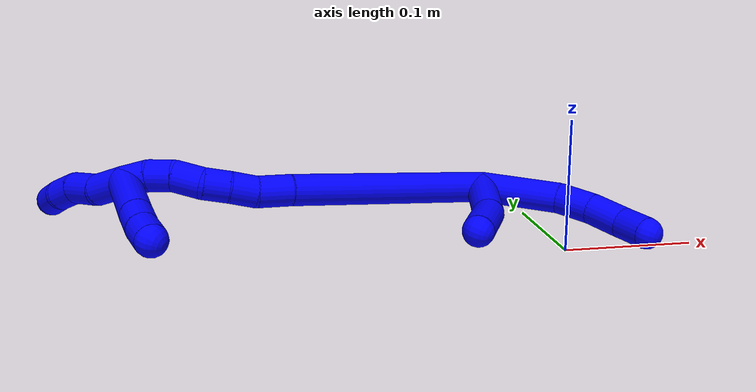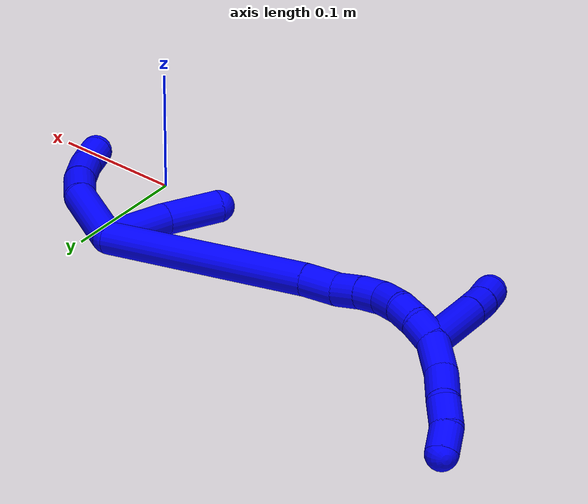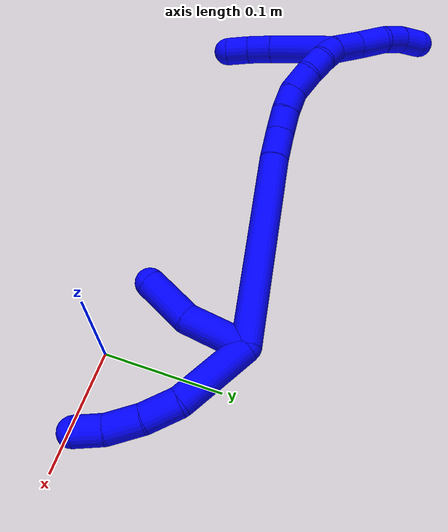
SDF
<sdf version="1.7">
 <world name="default">
  <model name="1">
   <static>0</static>
   <link name="1">
    <collision name="collision-cylinder-e_1_2_8">
     <pose>0.005806 -0.004931 -0.031844 2.98797 0.178256 1.71967</pose>
     <geometry><cylinder><radius>0.0125</radius><length>0.065485</length></cylinder></geometry>
     <surface>
      <friction><ode><mu>1.16</mu><mu2>1.16</mu2><slip1>0</slip1><slip2>0</slip2></ode></friction>
      <contact><ode><kp>1e+06</kp><kd>1</kd><max_vel>0</max_vel><min_depth>0.001</min_depth></ode></contact>
     </surface>
    </collision>
    <visual name="visual-cylinder-e_1_2_8">
     <pose>0.005806 -0.004931 -0.031844 2.98797 0.178256 1.71967</pose>
     <geometry><cylinder><radius>0.0125</radius><length>0.065485</length></cylinder></geometry>
     <material><ambient>0 0 1 1</ambient></material>
    </visual>
    <collision name="collision-cylinder-e_2_8_9">
     <pose>0.009676 -0.01296 -0.078152 2.93058 -0.130106 -1.10299</pose>
     <geometry><cylinder><radius>0.0125</radius><length>0.029836</length></cylinder></geometry>
     <surface>
      <friction><ode><mu>1.16</mu><mu2>1.16</mu2><slip1>0</slip1><slip2>0</slip2></ode></friction>
      <contact><ode><kp>1e+06</kp><kd>1</kd><max_vel>0</max_vel><min_depth>0.001</min_depth></ode></contact>
     </surface>
    </collision>
    <visual name="visual-cylinder-e_2_8_9">
     <pose>0.009676 -0.01296 -0.078152 2.93058 -0.130106 -1.10299</pose>
     <geometry><cylinder><radius>0.0125</radius><length>0.029836</length></cylinder></geometry>
     <material><ambient>0 0 1 1</ambient></material>
    </visual>
    <collision name="collision-cylinder-e_3_9_10">
     <pose>0.00328 -0.019462 -0.106445 2.90021 -0.303501 -1.80058</pose>
     <geometry><cylinder><radius>0.0125</radius><length>0.029847</length></cylinder></geometry>
     <surface>
      <friction><ode><mu>1.16</mu><mu2>1.16</mu2><slip1>0</slip1><slip2>0</slip2></ode></friction>
      <contact><ode><kp>1e+06</kp><kd>1</kd><max_vel>0</max_vel><min_depth>0.001</min_depth></ode></contact>
     </surface>
    </collision>
    <visual name="visual-cylinder-e_3_9_10">
     <pose>0.00328 -0.019462 -0.106445 2.90021 -0.303501 -1.80058</pose>
     <geometry><cylinder><radius>0.0125</radius><length>0.029847</length></cylinder></geometry>
     <material><ambient>0 0 1 1</ambient></material>
    </visual>
    <collision name="collision-cylinder-e_4_10_6">
     <pose>-0.006393 -0.027567 -0.130515 2.71127 -0.433308 -1.57793</pose>
     <geometry><cylinder><radius>0.0125</radius><length>0.024831</length></cylinder></geometry>
     <surface>
      <friction><ode><mu>1.16</mu><mu2>1.16</mu2><slip1>0</slip1><slip2>0</slip2></ode></friction>
      <contact><ode><kp>1e+06</kp><kd>1</kd><max_vel>0</max_vel><min_depth>0.001</min_depth></ode></contact>
     </surface>
    </collision>
    <visual name="visual-cylinder-e_4_10_6">
     <pose>-0.006393 -0.027567 -0.130515 2.71127 -0.433308 -1.57793</pose>
     <geometry><cylinder><radius>0.0125</radius><length>0.024831</length></cylinder></geometry>
     <material><ambient>0 0 1 1</ambient></material>
    </visual>
    <collision name="collision-cylinder-e_1_2_11">
     <pose>-0.022346 -0.010372 -0.012191 2.43663 -0.949209 -1.89887</pose>
     <geometry><cylinder><radius>0.0125</radius><length>0.054974</length></cylinder></geometry>
     <surface>
      <friction><ode><mu>1.16</mu><mu2>1.16</mu2><slip1>0</slip1><slip2>0</slip2></ode></friction>
      <contact><ode><kp>1e+06</kp><kd>1</kd><max_vel>0</max_vel><min_depth>0.001</min_depth></ode></contact>
     </surface>
    </collision>
    <visual name="visual-cylinder-e_1_2_11">
     <pose>-0.022346 -0.010372 -0.012191 2.43663 -0.949209 -1.89887</pose>
     <geometry><cylinder><radius>0.0125</radius><length>0.054974</length></cylinder></geometry>
     <material><ambient>0 0 1 1</ambient></material>
    </visual>
    <collision name="collision-cylinder-e_2_11_5">
     <pose>-0.064461 -0.03092 -0.027908 1.90439 -1.07199 -1.39085</pose>
     <geometry><cylinder><radius>0.0125</radius><length>0.045026</length></cylinder></geometry>
     <surface>
      <friction><ode><mu>1.16</mu><mu2>1.16</mu2><slip1>0</slip1><slip2>0</slip2></ode></friction>
      <contact><ode><kp>1e+06</kp><kd>1</kd><max_vel>0</max_vel><min_depth>0.001</min_depth></ode></contact>
     </surface>
    </collision>
    <visual name="visual-cylinder-e_2_11_5">
     <pose>-0.064461 -0.03092 -0.027908 1.90439 -1.07199 -1.39085</pose>
     <geometry><cylinder><radius>0.0125</radius><length>0.045026</length></cylinder></geometry>
     <material><ambient>0 0 1 1</ambient></material>
    </visual>
    <collision name="collision-cylinder-e_1_2_12">
     <pose>-0.058456 -0.018749 0.056808 0.318781 -0.773852 -0.130817</pose>
     <geometry><cylinder><radius>0.0125</radius><length>0.167282</length></cylinder></geometry>
     <surface>
      <friction><ode><mu>1.16</mu><mu2>1.16</mu2><slip1>0</slip1><slip2>0</slip2></ode></friction>
      <contact><ode><kp>1e+06</kp><kd>1</kd><max_vel>0</max_vel><min_depth>0.001</min_depth></ode></contact>
     </surface>
    </collision>
    <visual name="visual-cylinder-e_1_2_12">
     <pose>-0.058456 -0.018749 0.056808 0.318781 -0.773852 -0.130817</pose>
     <geometry><cylinder><radius>0.0125</radius><length>0.167282</length></cylinder></geometry>
     <material><ambient>0 0 1 1</ambient></material>
    </visual>
    <collision name="collision-cylinder-e_2_12_13">
     <pose>-0.126452 -0.039597 0.123332 0.2128 -0.764825 -0.085863</pose>
     <geometry><cylinder><radius>0.0125</radius><length>0.027554</length></cylinder></geometry>
     <surface>
      <friction><ode><mu>1.16</mu><mu2>1.16</mu2><slip1>0</slip1><slip2>0</slip2></ode></friction>
      <contact><ode><kp>1e+06</kp><kd>1</kd><max_vel>0</max_vel><min_depth>0.001</min_depth></ode></contact>
     </surface>
    </collision>
    <visual name="visual-cylinder-e_2_12_13">
     <pose>-0.126452 -0.039597 0.123332 0.2128 -0.764825 -0.085863</pose>
     <geometry><cylinder><radius>0.0125</radius><length>0.027554</length></cylinder></geometry>
     <material><ambient>0 0 1 1</ambient></material>
    </visual>
    <collision name="collision-cylinder-e_3_13_14">
     <pose>-0.141848 -0.045015 0.141379 0.37908 -0.578549 -0.11407</pose>
     <geometry><cylinder><radius>0.0125</radius><length>0.02142</length></cylinder></geometry>
     <surface>
      <friction><ode><mu>1.16</mu><mu2>1.16</mu2><slip1>0</slip1><slip2>0</slip2></ode></friction>
      <contact><ode><kp>1e+06</kp><kd>1</kd><max_vel>0</max_vel><min_depth>0.001</min_depth></ode></contact>
     </surface>
    </collision>
    <visual name="visual-cylinder-e_3_13_14">
     <pose>-0.141848 -0.045015 0.141379 0.37908 -0.578549 -0.11407</pose>
     <geometry><cylinder><radius>0.0125</radius><length>0.02142</length></cylinder></geometry>
     <material><ambient>0 0 1 1</ambient></material>
    </visual>
    <collision name="collision-cylinder-e_4_14_15">
     <pose>-0.152954 -0.050431 0.158136 0.244034 -0.543765 -0.068346</pose>
     <geometry><cylinder><radius>0.0125</radius><length>0.020294</length></cylinder></geometry>
     <surface>
      <friction><ode><mu>1.16</mu><mu2>1.16</mu2><slip1>0</slip1><slip2>0</slip2></ode></friction>
      <contact><ode><kp>1e+06</kp><kd>1</kd><max_vel>0</max_vel><min_depth>0.001</min_depth></ode></contact>
     </surface>
    </collision>
    <visual name="visual-cylinder-e_4_14_15">
     <pose>-0.152954 -0.050431 0.158136 0.244034 -0.543765 -0.068346</pose>
     <geometry><cylinder><radius>0.0125</radius><length>0.020294</length></cylinder></geometry>
     <material><ambient>0 0 1 1</ambient></material>
    </visual>
    <collision name="collision-cylinder-e_5_15_16">
     <pose>-0.161131 -0.053416 0.177738 0.079141 -0.255403 -0.010167</pose>
     <geometry><cylinder><radius>0.0125</radius><length>0.023174</length></cylinder></geometry>
     <surface>
      <friction><ode><mu>1.16</mu><mu2>1.16</mu2><slip1>0</slip1><slip2>0</slip2></ode></friction>
      <contact><ode><kp>1e+06</kp><kd>1</kd><max_vel>0</max_vel><min_depth>0.001</min_depth></ode></contact>
     </surface>
    </collision>
    <visual name="visual-cylinder-e_5_15_16">
     <pose>-0.161131 -0.053416 0.177738 0.079141 -0.255403 -0.010167</pose>
     <geometry><cylinder><radius>0.0125</radius><length>0.023174</length></cylinder></geometry>
     <material><ambient>0 0 1 1</ambient></material>
    </visual>
    <collision name="collision-cylinder-e_6_16_17">
     <pose>-0.167961 -0.053014 0.198146 -0.138606 -0.39654 0.02789</pose>
     <geometry><cylinder><radius>0.0125</radius><length>0.02021</length></cylinder></geometry>
     <surface>
      <friction><ode><mu>1.16</mu><mu2>1.16</mu2><slip1>0</slip1><slip2>0</slip2></ode></friction>
      <contact><ode><kp>1e+06</kp><kd>1</kd><max_vel>0</max_vel><min_depth>0.001</min_depth></ode></contact>
     </surface>
    </collision>
    <visual name="visual-cylinder-e_6_16_17">
     <pose>-0.167961 -0.053014 0.198146 -0.138606 -0.39654 0.02789</pose>
     <geometry><cylinder><radius>0.0125</radius><length>0.02021</length></cylinder></geometry>
     <material><ambient>0 0 1 1</ambient></material>
    </visual>
    <collision name="collision-cylinder-e_7_17_1">
     <pose>-0.176998 -0.048598 0.215409 -0.371474 -0.537193 0.103348</pose>
     <geometry><cylinder><radius>0.0125</radius><length>0.020065</length></cylinder></geometry>
     <surface>
      <friction><ode><mu>1.16</mu><mu2>1.16</mu2><slip1>0</slip1><slip2>0</slip2></ode></friction>
      <contact><ode><kp>1e+06</kp><kd>1</kd><max_vel>0</max_vel><min_depth>0.001</min_depth></ode></contact>
     </surface>
    </collision>
    <visual name="visual-cylinder-e_7_17_1">
     <pose>-0.176998 -0.048598 0.215409 -0.371474 -0.537193 0.103348</pose>
     <geometry><cylinder><radius>0.0125</radius><length>0.020065</length></cylinder></geometry>
     <material><ambient>0 0 1 1</ambient></material>
    </visual>
    <collision name="collision-cylinder-e_1_1_18">
     <pose>-0.1849 -0.037402 0.235244 -0.599477 -0.191225 0.059261</pose>
     <geometry><cylinder><radius>0.0125</radius><length>0.029125</length></cylinder></geometry>
     <surface>
      <friction><ode><mu>1.16</mu><mu2>1.16</mu2><slip1>0</slip1><slip2>0</slip2></ode></friction>
      <contact><ode><kp>1e+06</kp><kd>1</kd><max_vel>0</max_vel><min_depth>0.001</min_depth></ode></contact>
     </surface>
    </collision>
    <visual name="visual-cylinder-e_1_1_18">
     <pose>-0.1849 -0.037402 0.235244 -0.599477 -0.191225 0.059261</pose>
     <geometry><cylinder><radius>0.0125</radius><length>0.029125</length></cylinder></geometry>
     <material><ambient>0 0 1 1</ambient></material>
    </visual>
    <collision name="collision-cylinder-e_2_18_19">
     <pose>-0.18677 -0.023226 0.259615 -0.452559 0.064123 -0.014767</pose>
     <geometry><cylinder><radius>0.0125</radius><length>0.028005</length></cylinder></geometry>
     <surface>
      <friction><ode><mu>1.16</mu><mu2>1.16</mu2><slip1>0</slip1><slip2>0</slip2></ode></friction>
      <contact><ode><kp>1e+06</kp><kd>1</kd><max_vel>0</max_vel><min_depth>0.001</min_depth></ode></contact>
     </surface>
    </collision>
    <visual name="visual-cylinder-e_2_18_19">
     <pose>-0.18677 -0.023226 0.259615 -0.452559 0.064123 -0.014767</pose>
     <geometry><cylinder><radius>0.0125</radius><length>0.028005</length></cylinder></geometry>
     <material><ambient>0 0 1 1</ambient></material>
    </visual>
    <collision name="collision-cylinder-e_3_19_20">
     <pose>-0.187291 -0.010264 0.280284 -0.701953 -0.132897 0.04872</pose>
     <geometry><cylinder><radius>0.0125</radius><length>0.021408</length></cylinder></geometry>
     <surface>
      <friction><ode><mu>1.16</mu><mu2>1.16</mu2><slip1>0</slip1><slip2>0</slip2></ode></friction>
      <contact><ode><kp>1e+06</kp><kd>1</kd><max_vel>0</max_vel><min_depth>0.001</min_depth></ode></contact>
     </surface>
    </collision>
    <visual name="visual-cylinder-e_3_19_20">
     <pose>-0.187291 -0.010264 0.280284 -0.701953 -0.132897 0.04872</pose>
     <geometry><cylinder><radius>0.0125</radius><length>0.021408</length></cylinder></geometry>
     <material><ambient>0 0 1 1</ambient></material>
    </visual>
    <collision name="collision-cylinder-e_4_20_4">
     <pose>-0.187545 0.004566 0.295465 -0.845145 0.108723 -0.048927</pose>
     <geometry><cylinder><radius>0.0125</radius><length>0.021461</length></cylinder></geometry>
     <surface>
      <friction><ode><mu>1.16</mu><mu2>1.16</mu2><slip1>0</slip1><slip2>0</slip2></ode></friction>
      <contact><ode><kp>1e+06</kp><kd>1</kd><max_vel>0</max_vel><min_depth>0.001</min_depth></ode></contact>
     </surface>
    </collision>
    <visual name="visual-cylinder-e_4_20_4">
     <pose>-0.187545 0.004566 0.295465 -0.845145 0.108723 -0.048927</pose>
     <geometry><cylinder><radius>0.0125</radius><length>0.021461</length></cylinder></geometry>
     <material><ambient>0 0 1 1</ambient></material>
    </visual>
    <collision name="collision-cylinder-e_1_1_21">
     <pose>-0.200004 -0.054718 0.202664 2.72277 -0.666056 -2.03971</pose>
     <geometry><cylinder><radius>0.0125</radius><length>0.057848</length></cylinder></geometry>
     <surface>
      <friction><ode><mu>1.16</mu><mu2>1.16</mu2><slip1>0</slip1><slip2>0</slip2></ode></friction>
      <contact><ode><kp>1e+06</kp><kd>1</kd><max_vel>0</max_vel><min_depth>0.001</min_depth></ode></contact>
     </surface>
    </collision>
    <visual name="visual-cylinder-e_1_1_21">
     <pose>-0.200004 -0.054718 0.202664 2.72277 -0.666056 -2.03971</pose>
     <geometry><cylinder><radius>0.0125</radius><length>0.057848</length></cylinder></geometry>
     <material><ambient>0 0 1 1</ambient></material>
    </visual>
    <collision name="collision-cylinder-e_2_21_22">
     <pose>-0.224371 -0.067149 0.173848 2.76468 -0.644278 -2.10332</pose>
     <geometry><cylinder><radius>0.0125</radius><length>0.02163</length></cylinder></geometry>
     <surface>
      <friction><ode><mu>1.16</mu><mu2>1.16</mu2><slip1>0</slip1><slip2>0</slip2></ode></friction>
      <contact><ode><kp>1e+06</kp><kd>1</kd><max_vel>0</max_vel><min_depth>0.001</min_depth></ode></contact>
     </surface>
    </collision>
    <visual name="visual-cylinder-e_2_21_22">
     <pose>-0.224371 -0.067149 0.173848 2.76468 -0.644278 -2.10332</pose>
     <geometry><cylinder><radius>0.0125</radius><length>0.02163</length></cylinder></geometry>
     <material><ambient>0 0 1 1</ambient></material>
    </visual>
    <collision name="collision-cylinder-e_3_22_3">
     <pose>-0.236134 -0.073514 0.157597 2.77188 -0.539032 -1.95146</pose>
     <geometry><cylinder><radius>0.0125</radius><length>0.020522</length></cylinder></geometry>
     <surface>
      <friction><ode><mu>1.16</mu><mu2>1.16</mu2><slip1>0</slip1><slip2>0</slip2></ode></friction>
      <contact><ode><kp>1e+06</kp><kd>1</kd><max_vel>0</max_vel><min_depth>0.001</min_depth></ode></contact>
     </surface>
    </collision>
    <visual name="visual-cylinder-e_3_22_3">
     <pose>-0.236134 -0.073514 0.157597 2.77188 -0.539032 -1.95146</pose>
     <geometry><cylinder><radius>0.0125</radius><length>0.020522</length></cylinder></geometry>
     <material><ambient>0 0 1 1</ambient></material>
    </visual>
    <collision name="collision-sphere-3">
     <pose>-0.241401 -0.076696 0.149385 0 -0 0</pose>
     <geometry><sphere><radius>0.0125</radius></sphere></geometry>
     <surface>
      <friction><ode><mu>1.16</mu><mu2>1.16</mu2><slip1>0</slip1><slip2>0</slip2></ode></friction>
      <contact><ode><kp>1e+06</kp><kd>1</kd><max_vel>0</max_vel><min_depth>0.001</min_depth></ode></contact>
     </surface>
    </collision>
    <visual name="visual-sphere-3">
     <pose>-0.241401 -0.076696 0.149385 0 -0 0</pose>
     <geometry><sphere><radius>0.0125</radius></sphere></geometry>
     <material><ambient>0 0 1 1</ambient></material>
    </visual>
    <collision name="collision-sphere-22">
     <pose>-0.230867 -0.070332 0.165808 0 -0 0</pose>
     <geometry><sphere><radius>0.0125</radius></sphere></geometry>
     <surface>
      <friction><ode><mu>1.16</mu><mu2>1.16</mu2><slip1>0</slip1><slip2>0</slip2></ode></friction>
      <contact><ode><kp>1e+06</kp><kd>1</kd><max_vel>0</max_vel><min_depth>0.001</min_depth></ode></contact>
     </surface>
    </collision>
    <visual name="visual-sphere-22">
     <pose>-0.230867 -0.070332 0.165808 0 -0 0</pose>
     <geometry><sphere><radius>0.0125</radius></sphere></geometry>
     <material><ambient>0 0 1 1</ambient></material>
    </visual>
    <collision name="collision-sphere-21">
     <pose>-0.217876 -0.063967 0.181887 0 -0 0</pose>
     <geometry><sphere><radius>0.0125</radius></sphere></geometry>
     <surface>
      <friction><ode><mu>1.16</mu><mu2>1.16</mu2><slip1>0</slip1><slip2>0</slip2></ode></friction>
      <contact><ode><kp>1e+06</kp><kd>1</kd><max_vel>0</max_vel><min_depth>0.001</min_depth></ode></contact>
     </surface>
    </collision>
    <visual name="visual-sphere-21">
     <pose>-0.217876 -0.063967 0.181887 0 -0 0</pose>
     <geometry><sphere><radius>0.0125</radius></sphere></geometry>
     <material><ambient>0 0 1 1</ambient></material>
    </visual>
    <collision name="collision-sphere-4">
     <pose>-0.186381 0.012546 0.302544 0 -0 0</pose>
     <geometry><sphere><radius>0.0125</radius></sphere></geometry>
     <surface>
      <friction><ode><mu>1.16</mu><mu2>1.16</mu2><slip1>0</slip1><slip2>0</slip2></ode></friction>
      <contact><ode><kp>1e+06</kp><kd>1</kd><max_vel>0</max_vel><min_depth>0.001</min_depth></ode></contact>
     </surface>
    </collision>
    <visual name="visual-sphere-4">
     <pose>-0.186381 0.012546 0.302544 0 -0 0</pose>
     <geometry><sphere><radius>0.0125</radius></sphere></geometry>
     <material><ambient>0 0 1 1</ambient></material>
    </visual>
    <collision name="collision-sphere-20">
     <pose>-0.18871 -0.003414 0.288385 0 -0 0</pose>
     <geometry><sphere><radius>0.0125</radius></sphere></geometry>
     <surface>
      <friction><ode><mu>1.16</mu><mu2>1.16</mu2><slip1>0</slip1><slip2>0</slip2></ode></friction>
      <contact><ode><kp>1e+06</kp><kd>1</kd><max_vel>0</max_vel><min_depth>0.001</min_depth></ode></contact>
     </surface>
    </collision>
    <visual name="visual-sphere-20">
     <pose>-0.18871 -0.003414 0.288385 0 -0 0</pose>
     <geometry><sphere><radius>0.0125</radius></sphere></geometry>
     <material><ambient>0 0 1 1</ambient></material>
    </visual>
    <collision name="collision-sphere-11">
     <pose>-0.044691 -0.020744 -0.024382 0 -0 0</pose>
     <geometry><sphere><radius>0.0125</radius></sphere></geometry>
     <surface>
      <friction><ode><mu>1.16</mu><mu2>1.16</mu2><slip1>0</slip1><slip2>0</slip2></ode></friction>
      <contact><ode><kp>1e+06</kp><kd>1</kd><max_vel>0</max_vel><min_depth>0.001</min_depth></ode></contact>
     </surface>
    </collision>
    <visual name="visual-sphere-11">
     <pose>-0.044691 -0.020744 -0.024382 0 -0 0</pose>
     <geometry><sphere><radius>0.0125</radius></sphere></geometry>
     <material><ambient>0 0 1 1</ambient></material>
    </visual>
    <collision name="collision-sphere-6">
     <pose>-0.011606 -0.032268 -0.140756 0 -0 0</pose>
     <geometry><sphere><radius>0.0125</radius></sphere></geometry>
     <surface>
      <friction><ode><mu>1.16</mu><mu2>1.16</mu2><slip1>0</slip1><slip2>0</slip2></ode></friction>
      <contact><ode><kp>1e+06</kp><kd>1</kd><max_vel>0</max_vel><min_depth>0.001</min_depth></ode></contact>
     </surface>
    </collision>
    <visual name="visual-sphere-6">
     <pose>-0.011606 -0.032268 -0.140756 0 -0 0</pose>
     <geometry><sphere><radius>0.0125</radius></sphere></geometry>
     <material><ambient>0 0 1 1</ambient></material>
    </visual>
    <collision name="collision-sphere-10">
     <pose>-0.00118 -0.022867 -0.120274 0 -0 0</pose>
     <geometry><sphere><radius>0.0125</radius></sphere></geometry>
     <surface>
      <friction><ode><mu>1.16</mu><mu2>1.16</mu2><slip1>0</slip1><slip2>0</slip2></ode></friction>
      <contact><ode><kp>1e+06</kp><kd>1</kd><max_vel>0</max_vel><min_depth>0.001</min_depth></ode></contact>
     </surface>
    </collision>
    <visual name="visual-sphere-10">
     <pose>-0.00118 -0.022867 -0.120274 0 -0 0</pose>
     <geometry><sphere><radius>0.0125</radius></sphere></geometry>
     <material><ambient>0 0 1 1</ambient></material>
    </visual>
    <collision name="collision-sphere-9">
     <pose>0.00774 -0.016058 -0.092616 0 -0 0</pose>
     <geometry><sphere><radius>0.0125</radius></sphere></geometry>
     <surface>
      <friction><ode><mu>1.16</mu><mu2>1.16</mu2><slip1>0</slip1><slip2>0</slip2></ode></friction>
      <contact><ode><kp>1e+06</kp><kd>1</kd><max_vel>0</max_vel><min_depth>0.001</min_depth></ode></contact>
     </surface>
    </collision>
    <visual name="visual-sphere-9">
     <pose>0.00774 -0.016058 -0.092616 0 -0 0</pose>
     <geometry><sphere><radius>0.0125</radius></sphere></geometry>
     <material><ambient>0 0 1 1</ambient></material>
    </visual>
    <collision name="collision-sphere-2">
     <geometry><sphere><radius>0.0125</radius></sphere></geometry>
     <surface>
      <friction><ode><mu>1.16</mu><mu2>1.16</mu2><slip1>0</slip1><slip2>0</slip2></ode></friction>
      <contact><ode><kp>1e+06</kp><kd>1</kd><max_vel>0</max_vel><min_depth>0.001</min_depth></ode></contact>
     </surface>
    </collision>
    <visual name="visual-sphere-2">
     <geometry><sphere><radius>0.0125</radius></sphere></geometry>
     <material><ambient>0 0 1 1</ambient></material>
    </visual>
    <collision name="collision-sphere-19">
     <pose>-0.185873 -0.017115 0.272183 0 -0 0</pose>
     <geometry><sphere><radius>0.0125</radius></sphere></geometry>
     <surface>
      <friction><ode><mu>1.16</mu><mu2>1.16</mu2><slip1>0</slip1><slip2>0</slip2></ode></friction>
      <contact><ode><kp>1e+06</kp><kd>1</kd><max_vel>0</max_vel><min_depth>0.001</min_depth></ode></contact>
     </surface>
    </collision>
    <visual name="visual-sphere-19">
     <pose>-0.185873 -0.017115 0.272183 0 -0 0</pose>
     <geometry><sphere><radius>0.0125</radius></sphere></geometry>
     <material><ambient>0 0 1 1</ambient></material>
    </visual>
    <collision name="collision-sphere-8">
     <pose>0.011611 -0.009861 -0.063688 0 -0 0</pose>
     <geometry><sphere><radius>0.0125</radius></sphere></geometry>
     <surface>
      <friction><ode><mu>1.16</mu><mu2>1.16</mu2><slip1>0</slip1><slip2>0</slip2></ode></friction>
      <contact><ode><kp>1e+06</kp><kd>1</kd><max_vel>0</max_vel><min_depth>0.001</min_depth></ode></contact>
     </surface>
    </collision>
    <visual name="visual-sphere-8">
     <pose>0.011611 -0.009861 -0.063688 0 -0 0</pose>
     <geometry><sphere><radius>0.0125</radius></sphere></geometry>
     <material><ambient>0 0 1 1</ambient></material>
    </visual>
    <collision name="collision-sphere-5">
     <pose>-0.084231 -0.041096 -0.031435 0 -0 0</pose>
     <geometry><sphere><radius>0.0125</radius></sphere></geometry>
     <surface>
      <friction><ode><mu>1.16</mu><mu2>1.16</mu2><slip1>0</slip1><slip2>0</slip2></ode></friction>
      <contact><ode><kp>1e+06</kp><kd>1</kd><max_vel>0</max_vel><min_depth>0.001</min_depth></ode></contact>
     </surface>
    </collision>
    <visual name="visual-sphere-5">
     <pose>-0.084231 -0.041096 -0.031435 0 -0 0</pose>
     <geometry><sphere><radius>0.0125</radius></sphere></geometry>
     <material><ambient>0 0 1 1</ambient></material>
    </visual>
    <collision name="collision-sphere-12">
     <pose>-0.116913 -0.037498 0.113616 0 -0 0</pose>
     <geometry><sphere><radius>0.0125</radius></sphere></geometry>
     <surface>
      <friction><ode><mu>1.16</mu><mu2>1.16</mu2><slip1>0</slip1><slip2>0</slip2></ode></friction>
      <contact><ode><kp>1e+06</kp><kd>1</kd><max_vel>0</max_vel><min_depth>0.001</min_depth></ode></contact>
     </surface>
    </collision>
    <visual name="visual-sphere-12">
     <pose>-0.116913 -0.037498 0.113616 0 -0 0</pose>
     <geometry><sphere><radius>0.0125</radius></sphere></geometry>
     <material><ambient>0 0 1 1</ambient></material>
    </visual>
    <collision name="collision-sphere-13">
     <pose>-0.135992 -0.041696 0.133048 0 -0 0</pose>
     <geometry><sphere><radius>0.0125</radius></sphere></geometry>
     <surface>
      <friction><ode><mu>1.16</mu><mu2>1.16</mu2><slip1>0</slip1><slip2>0</slip2></ode></friction>
      <contact><ode><kp>1e+06</kp><kd>1</kd><max_vel>0</max_vel><min_depth>0.001</min_depth></ode></contact>
     </surface>
    </collision>
    <visual name="visual-sphere-13">
     <pose>-0.135992 -0.041696 0.133048 0 -0 0</pose>
     <geometry><sphere><radius>0.0125</radius></sphere></geometry>
     <material><ambient>0 0 1 1</ambient></material>
    </visual>
    <collision name="collision-sphere-14">
     <pose>-0.147704 -0.048333 0.149709 0 -0 0</pose>
     <geometry><sphere><radius>0.0125</radius></sphere></geometry>
     <surface>
      <friction><ode><mu>1.16</mu><mu2>1.16</mu2><slip1>0</slip1><slip2>0</slip2></ode></friction>
      <contact><ode><kp>1e+06</kp><kd>1</kd><max_vel>0</max_vel><min_depth>0.001</min_depth></ode></contact>
     </surface>
    </collision>
    <visual name="visual-sphere-14">
     <pose>-0.147704 -0.048333 0.149709 0 -0 0</pose>
     <geometry><sphere><radius>0.0125</radius></sphere></geometry>
     <material><ambient>0 0 1 1</ambient></material>
    </visual>
    <collision name="collision-sphere-15">
     <pose>-0.158204 -0.052529 0.166562 0 -0 0</pose>
     <geometry><sphere><radius>0.0125</radius></sphere></geometry>
     <surface>
      <friction><ode><mu>1.16</mu><mu2>1.16</mu2><slip1>0</slip1><slip2>0</slip2></ode></friction>
      <contact><ode><kp>1e+06</kp><kd>1</kd><max_vel>0</max_vel><min_depth>0.001</min_depth></ode></contact>
     </surface>
    </collision>
    <visual name="visual-sphere-15">
     <pose>-0.158204 -0.052529 0.166562 0 -0 0</pose>
     <geometry><sphere><radius>0.0125</radius></sphere></geometry>
     <material><ambient>0 0 1 1</ambient></material>
    </visual>
    <collision name="collision-sphere-16">
     <pose>-0.164059 -0.054302 0.188914 0 -0 0</pose>
     <geometry><sphere><radius>0.0125</radius></sphere></geometry>
     <surface>
      <friction><ode><mu>1.16</mu><mu2>1.16</mu2><slip1>0</slip1><slip2>0</slip2></ode></friction>
      <contact><ode><kp>1e+06</kp><kd>1</kd><max_vel>0</max_vel><min_depth>0.001</min_depth></ode></contact>
     </surface>
    </collision>
    <visual name="visual-sphere-16">
     <pose>-0.164059 -0.054302 0.188914 0 -0 0</pose>
     <geometry><sphere><radius>0.0125</radius></sphere></geometry>
     <material><ambient>0 0 1 1</ambient></material>
    </visual>
    <collision name="collision-sphere-17">
     <pose>-0.171864 -0.051727 0.207377 0 -0 0</pose>
     <geometry><sphere><radius>0.0125</radius></sphere></geometry>
     <surface>
      <friction><ode><mu>1.16</mu><mu2>1.16</mu2><slip1>0</slip1><slip2>0</slip2></ode></friction>
      <contact><ode><kp>1e+06</kp><kd>1</kd><max_vel>0</max_vel><min_depth>0.001</min_depth></ode></contact>
     </surface>
    </collision>
    <visual name="visual-sphere-17">
     <pose>-0.171864 -0.051727 0.207377 0 -0 0</pose>
     <geometry><sphere><radius>0.0125</radius></sphere></geometry>
     <material><ambient>0 0 1 1</ambient></material>
    </visual>
    <collision name="collision-sphere-1">
     <pose>-0.182132 -0.045469 0.22344 0 -0 0</pose>
     <geometry><sphere><radius>0.0125</radius></sphere></geometry>
     <surface>
      <friction><ode><mu>1.16</mu><mu2>1.16</mu2><slip1>0</slip1><slip2>0</slip2></ode></friction>
      <contact><ode><kp>1e+06</kp><kd>1</kd><max_vel>0</max_vel><min_depth>0.001</min_depth></ode></contact>
     </surface>
    </collision>
    <visual name="visual-sphere-1">
     <pose>-0.182132 -0.045469 0.22344 0 -0 0</pose>
     <geometry><sphere><radius>0.0125</radius></sphere></geometry>
     <material><ambient>0 0 1 1</ambient></material>
    </visual>
    <collision name="collision-sphere-18">
     <pose>-0.187668 -0.029336 0.247048 0 -0 0</pose>
     <geometry><sphere><radius>0.0125</radius></sphere></geometry>
     <surface>
      <friction><ode><mu>1.16</mu><mu2>1.16</mu2><slip1>0</slip1><slip2>0</slip2></ode></friction>
      <contact><ode><kp>1e+06</kp><kd>1</kd><max_vel>0</max_vel><min_depth>0.001</min_depth></ode></contact>
     </surface>
    </collision>
    <visual name="visual-sphere-18">
     <pose>-0.187668 -0.029336 0.247048 0 -0 0</pose>
     <geometry><sphere><radius>0.0125</radius></sphere></geometry>
     <material><ambient>0 0 1 1</ambient></material>
    </visual>
    <inertial>
     <pose>-0.098037 -0.028566 0.085339 0 -0 0</pose>
     <mass>0.75</mass>
     <inertia>
      <ixx>0.000212</ixx>
      <ixy>0</ixy>
      <ixz>0</ixz>
      <iyy>0.000384</iyy>
      <iyz>0</iyz>
      <izz>0.000427</izz>
     </inertia>
    </inertial>
   </link>
   <pose>-0.034397 0.107729 0.02222 -1.27376 -0.4279 0.823172</pose>
  </model>
 </world>
</sdf>
